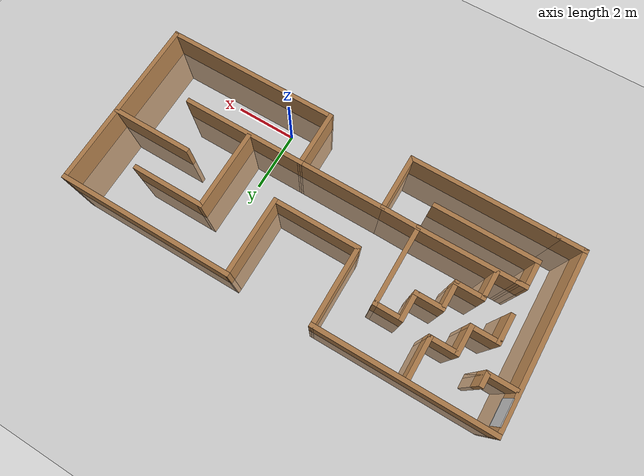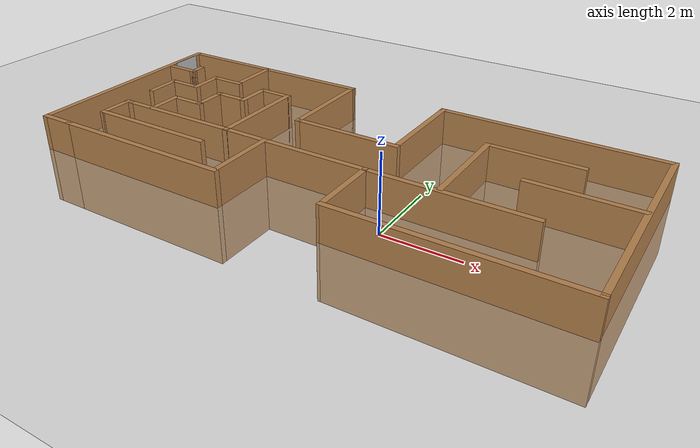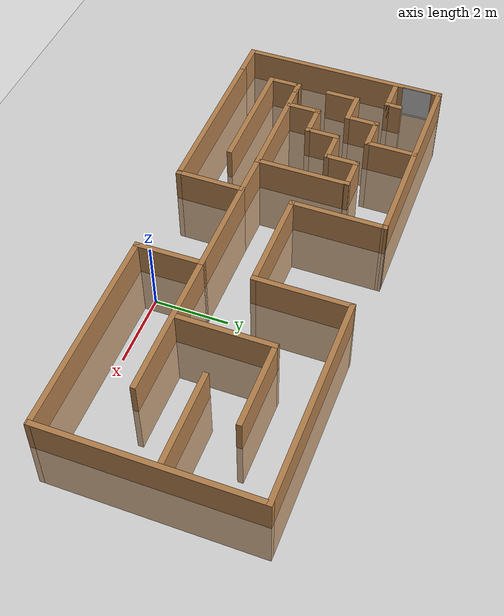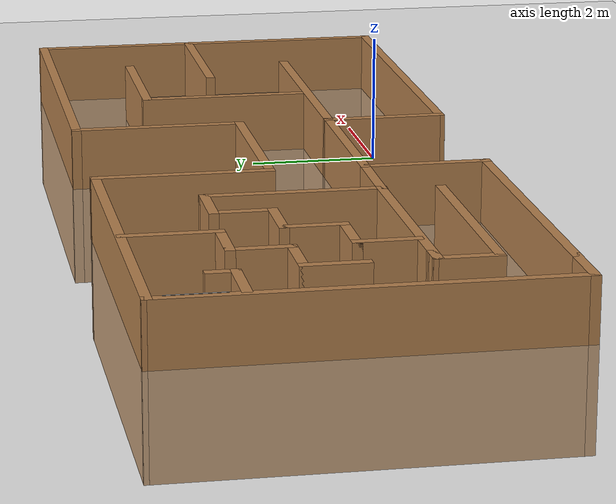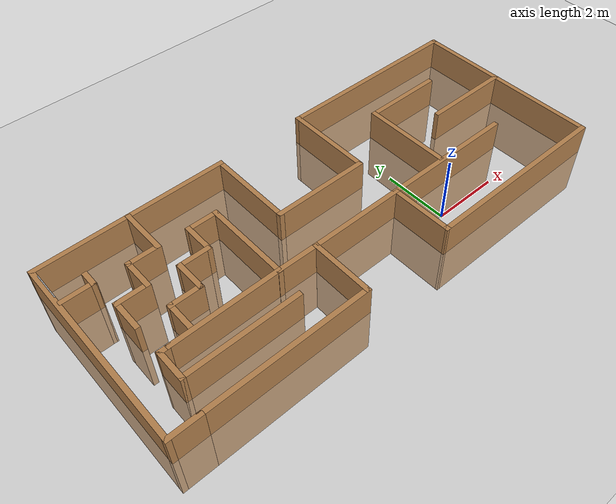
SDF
<sdf version="1.7">
 <world name="default">
  <light name="sun" type="directional">
   <pose>0 0 10 0 -0 0</pose>
   <diffuse>0.8 0.8 0.8 1</diffuse>
   <specular>0.2 0.2 0.2 1</specular>
   <attenuation>
    <range>1000</range>
    <constant>0.9</constant>
    <linear>0.01</linear>
    <quadratic>0.001</quadratic>
   </attenuation>
   <direction>-0.5 0.1 -0.9</direction>
   <spot><inner_angle>0</inner_angle><outer_angle>0</outer_angle><falloff>0</falloff></spot>
  </light>
  <model name="ground_plane">
   <static>1</static>
   <link name="link">
    <collision name="collision">
     <geometry><plane><normal>0 0 1</normal><size>100 100</size></plane></geometry>
     <surface>
      <contact><collide_bitmask>65535</collide_bitmask></contact>
      <friction><ode><mu>100</mu><mu2>50</mu2></ode></friction>
     </surface>
    </collision>
    <visual name="visual">
     <cast_shadows>0</cast_shadows>
     <geometry><plane><normal>0 0 1</normal><size>100 100</size></plane></geometry>
     <material>
      <script><uri>file://media/materials/scripts/gazebo.material</uri><name>Gazebo/Grey</name></script>
     </material>
    </visual>
   </link>
  </model>
  <gravity>0 0 -9.8</gravity>
  <magnetic_field>6e-06 2.3e-05 -4.2e-05</magnetic_field>
  <atmosphere type="adiabatic"/>
  <physics type="ode">
   <max_step_size>0.001</max_step_size>
   <real_time_factor>1</real_time_factor>
   <real_time_update_rate>1000</real_time_update_rate>
  </physics>
  <scene><ambient>0.4 0.4 0.4 1</ambient><background>0.7 0.7 0.7 1</background><shadows>1</shadows></scene>
  <audio><device>default</device></audio>
  <spherical_coordinates>
   <surface_model>EARTH_WGS84</surface_model>
   <latitude_deg>0</latitude_deg>
   <longitude_deg>0</longitude_deg>
   <elevation>0</elevation>
   <heading_deg>0</heading_deg>
  </spherical_coordinates>
  <model name="trsa_two_rooms">
   <pose>-2.2676 2.02466 -1.56619 0 -0 0</pose>
   <link name="Wall_102">
    <collision name="Wall_102_Collision">
     <geometry><box><size>1 0.15 2.5</size></box></geometry>
     <pose>0 0 1.25 0 -0 0</pose>
    </collision>
    <visual name="Wall_102_Visual">
     <pose>0 0 1.25 0 -0 0</pose>
     <geometry><box><size>1 0.15 2.5</size></box></geometry>
     <material>
      <script><uri>file://media/materials/scripts/gazebo.material</uri><name>Gazebo/Wood</name></script>
      <ambient>1 1 1 1</ambient>
     </material>
     <meta><layer>0</layer></meta>
    </visual>
    <pose>-3.13374 1.50612 0 0 -0 3.14159</pose>
   </link>
   <link name="Wall_103">
    <collision name="Wall_103_Collision">
     <geometry><box><size>1 0.15 2.5</size></box></geometry>
     <pose>0 0 1.25 0 -0 0</pose>
    </collision>
    <visual name="Wall_103_Visual">
     <pose>0 0 1.25 0 -0 0</pose>
     <geometry><box><size>1 0.15 2.5</size></box></geometry>
     <material>
      <script><uri>file://media/materials/scripts/gazebo.material</uri><name>Gazebo/Wood</name></script>
      <ambient>1 1 1 1</ambient>
     </material>
     <meta><layer>0</layer></meta>
    </visual>
    <pose>-3.55874 1.08112 0 0 -0 -1.5708</pose>
   </link>
   <link name="Wall_104">
    <collision name="Wall_104_Collision">
     <geometry><box><size>1 0.15 2.5</size></box></geometry>
     <pose>0 0 1.25 0 -0 0</pose>
    </collision>
    <visual name="Wall_104_Visual">
     <pose>0 0 1.25 0 -0 0</pose>
     <geometry><box><size>1 0.15 2.5</size></box></geometry>
     <material>
      <script><uri>file://media/materials/scripts/gazebo.material</uri><name>Gazebo/Wood</name></script>
      <ambient>1 1 1 1</ambient>
     </material>
     <meta><layer>0</layer></meta>
    </visual>
    <pose>-3.98374 0.656123 0 0 -0 3.14159</pose>
   </link>
   <link name="Wall_105">
    <collision name="Wall_105_Collision">
     <geometry><box><size>1 0.15 2.5</size></box></geometry>
     <pose>0 0 1.25 0 -0 0</pose>
    </collision>
    <visual name="Wall_105_Visual">
     <pose>0 0 1.25 0 -0 0</pose>
     <geometry><box><size>1 0.15 2.5</size></box></geometry>
     <material>
      <script><uri>file://media/materials/scripts/gazebo.material</uri><name>Gazebo/Wood</name></script>
      <ambient>1 1 1 1</ambient>
     </material>
     <meta><layer>0</layer></meta>
    </visual>
    <pose>-4.40874 0.231123 0 0 -0 -1.5708</pose>
   </link>
   <link name="Wall_106">
    <collision name="Wall_106_Collision">
     <geometry><box><size>1 0.15 2.5</size></box></geometry>
     <pose>0 0 1.25 0 -0 0</pose>
    </collision>
    <visual name="Wall_106_Visual">
     <pose>0 0 1.25 0 -0 0</pose>
     <geometry><box><size>1 0.15 2.5</size></box></geometry>
     <material>
      <script><uri>file://media/materials/scripts/gazebo.material</uri><name>Gazebo/Wood</name></script>
      <ambient>1 1 1 1</ambient>
     </material>
     <meta><layer>0</layer></meta>
    </visual>
    <pose>-4.83374 -0.193877 0 0 -0 3.14159</pose>
   </link>
   <link name="Wall_107">
    <collision name="Wall_107_Collision">
     <geometry><box><size>1 0.15 2.5</size></box></geometry>
     <pose>0 0 1.25 0 -0 0</pose>
    </collision>
    <visual name="Wall_107_Visual">
     <pose>0 0 1.25 0 -0 0</pose>
     <geometry><box><size>1 0.15 2.5</size></box></geometry>
     <material>
      <script><uri>file://media/materials/scripts/gazebo.material</uri><name>Gazebo/Wood</name></script>
      <ambient>1 1 1 1</ambient>
     </material>
     <meta><layer>0</layer></meta>
    </visual>
    <pose>-5.25874 -0.618877 0 0 -0 -1.5708</pose>
   </link>
   <link name="Wall_110">
    <collision name="Wall_110_Collision">
     <geometry><box><size>1.5 0.15 2.5</size></box></geometry>
     <pose>0 0 1.25 0 -0 0</pose>
    </collision>
    <visual name="Wall_110_Visual">
     <pose>0 0 1.25 0 -0 0</pose>
     <geometry><box><size>1.5 0.15 2.5</size></box></geometry>
     <material>
      <script><uri>file://media/materials/scripts/gazebo.material</uri><name>Gazebo/Wood</name></script>
      <ambient>1 1 1 1</ambient>
     </material>
     <meta><layer>0</layer></meta>
    </visual>
    <pose>-4.47062 2.22543 0 0 -0 -1.5708</pose>
   </link>
   <link name="Wall_111">
    <collision name="Wall_111_Collision">
     <geometry><box><size>1 0.15 2.5</size></box></geometry>
     <pose>0 0 1.25 0 -0 0</pose>
    </collision>
    <visual name="Wall_111_Visual">
     <pose>0 0 1.25 0 -0 0</pose>
     <geometry><box><size>1 0.15 2.5</size></box></geometry>
     <material>
      <script><uri>file://media/materials/scripts/gazebo.material</uri><name>Gazebo/Wood</name></script>
      <ambient>1 1 1 1</ambient>
     </material>
     <meta><layer>0</layer></meta>
    </visual>
    <pose>-4.89562 1.55043 0 0 -0 3.14159</pose>
   </link>
   <link name="Wall_112">
    <collision name="Wall_112_Collision">
     <geometry><box><size>1 0.15 2.5</size></box></geometry>
     <pose>0 0 1.25 0 -0 0</pose>
    </collision>
    <visual name="Wall_112_Visual">
     <pose>0 0 1.25 0 -0 0</pose>
     <geometry><box><size>1 0.15 2.5</size></box></geometry>
     <material>
      <script><uri>file://media/materials/scripts/gazebo.material</uri><name>Gazebo/Wood</name></script>
      <ambient>1 1 1 1</ambient>
     </material>
     <meta><layer>0</layer></meta>
    </visual>
    <pose>-5.32062 1.12543 0 0 -0 -1.5708</pose>
   </link>
   <link name="Wall_113">
    <collision name="Wall_113_Collision">
     <geometry><box><size>1 0.15 2.5</size></box></geometry>
     <pose>0 0 1.25 0 -0 0</pose>
    </collision>
    <visual name="Wall_113_Visual">
     <pose>0 0 1.25 0 -0 0</pose>
     <geometry><box><size>1 0.15 2.5</size></box></geometry>
     <material>
      <script><uri>file://media/materials/scripts/gazebo.material</uri><name>Gazebo/Wood</name></script>
      <ambient>1 1 1 1</ambient>
     </material>
     <meta><layer>0</layer></meta>
    </visual>
    <pose>-5.74562 0.700426 0 0 -0 3.14159</pose>
   </link>
   <link name="Wall_114">
    <collision name="Wall_114_Collision">
     <geometry><box><size>1 0.15 2.5</size></box></geometry>
     <pose>0 0 1.25 0 -0 0</pose>
    </collision>
    <visual name="Wall_114_Visual">
     <pose>0 0 1.25 0 -0 0</pose>
     <geometry><box><size>1 0.15 2.5</size></box></geometry>
     <material>
      <script><uri>file://media/materials/scripts/gazebo.material</uri><name>Gazebo/Wood</name></script>
      <ambient>1 1 1 1</ambient>
     </material>
     <meta><layer>0</layer></meta>
    </visual>
    <pose>-6.17062 0.275426 0 0 -0 -1.5708</pose>
   </link>
   <link name="Wall_116">
    <collision name="Wall_116_Collision">
     <geometry><box><size>1 0.15 2.5</size></box></geometry>
     <pose>0 0 1.25 0 -0 0</pose>
    </collision>
    <visual name="Wall_116_Visual">
     <pose>0 0 1.25 0 -0 0</pose>
     <geometry><box><size>1 0.15 2.5</size></box></geometry>
     <material>
      <script><uri>file://media/materials/scripts/gazebo.material</uri><name>Gazebo/Wood</name></script>
      <ambient>1 1 1 1</ambient>
     </material>
     <meta><layer>0</layer></meta>
    </visual>
    <pose>-6.69062 1.61099 0 0 -0 0</pose>
   </link>
   <link name="Wall_117">
    <collision name="Wall_117_Collision">
     <geometry><box><size>0.5 0.15 2.5</size></box></geometry>
     <pose>0 0 1.25 0 -0 0</pose>
    </collision>
    <visual name="Wall_117_Visual">
     <pose>0 0 1.25 0 -0 0</pose>
     <geometry><box><size>0.5 0.15 2.5</size></box></geometry>
     <material>
      <script><uri>file://media/materials/scripts/gazebo.material</uri><name>Gazebo/Wood</name></script>
      <ambient>1 1 1 1</ambient>
     </material>
     <meta><layer>0</layer></meta>
    </visual>
    <pose>-6.26562 1.78599 0 0 -0 1.5708</pose>
   </link>
   <link name="Wall_119">
    <collision name="Wall_119_Collision">
     <geometry><box><size>0.403213 0.15 2.5</size></box></geometry>
     <pose>0 0 1.25 0 -0 0</pose>
    </collision>
    <visual name="Wall_119_Visual">
     <pose>0 0 1.25 0 -0 0</pose>
     <geometry><box><size>0.403213 0.15 2.5</size></box></geometry>
     <material>
      <script><uri>file://media/materials/scripts/gazebo.material</uri><name>Gazebo/Wood</name></script>
      <ambient>1 1 1 1</ambient>
     </material>
     <meta><layer>0</layer></meta>
    </visual>
    <pose>-6.03421 -1.10246 0 0 -0 -3.1324</pose>
   </link>
   <link name="Wall_124">
    <collision name="Wall_124_Collision">
     <geometry><box><size>1 0.15 2.5</size></box></geometry>
     <pose>0 0 1.25 0 -0 0</pose>
    </collision>
    <visual name="Wall_124_Visual">
     <pose>0 0 1.25 0 -0 0</pose>
     <geometry><box><size>1 0.15 2.5</size></box></geometry>
     <material>
      <script><uri>file://media/materials/scripts/gazebo.material</uri><name>Gazebo/Wood</name></script>
      <ambient>1 1 1 1</ambient>
     </material>
     <meta><layer>0</layer></meta>
    </visual>
    <pose>-6.16082 -1.52862 0 0 -0 -1.5708</pose>
   </link>
   <link name="Wall_125">
    <collision name="Wall_125_Collision">
     <geometry><box><size>3.5 0.15 2.5</size></box></geometry>
     <pose>0 0 1.25 0 -0 0</pose>
    </collision>
    <visual name="Wall_125_Visual">
     <pose>0 0 1.25 0 -0 0</pose>
     <geometry><box><size>3.5 0.15 2.5</size></box></geometry>
     <material>
      <script><uri>file://media/materials/scripts/gazebo.material</uri><name>Gazebo/Wood</name></script>
      <ambient>1 1 1 1</ambient>
     </material>
     <meta><layer>0</layer></meta>
    </visual>
    <pose>-4.48581 -1.95362 0 0 -0 0</pose>
   </link>
   <link name="Wall_60">
    <collision name="Wall_60_Collision">
     <geometry><box><size>6 0.15 2.5</size></box></geometry>
     <pose>0 0 1.25 0 -0 0</pose>
    </collision>
    <visual name="Wall_60_Visual">
     <pose>0 0 1.25 0 -0 0</pose>
     <geometry><box><size>6 0.15 2.5</size></box></geometry>
     <material>
      <script><uri>file://media/materials/scripts/gazebo.material</uri><name>Gazebo/Wood</name></script>
      <ambient>1 1 1 1</ambient>
     </material>
     <meta><layer>0</layer></meta>
    </visual>
    <pose>4.28307 2.9425 0 0 -0 0</pose>
   </link>
   <link name="Wall_61">
    <collision name="Wall_61_Collision">
     <geometry><box><size>6 0.15 2.5</size></box></geometry>
     <pose>0 0 1.25 0 -0 0</pose>
    </collision>
    <visual name="Wall_61_Visual">
     <pose>0 0 1.25 0 -0 0</pose>
     <geometry><box><size>6 0.15 2.5</size></box></geometry>
     <material>
      <script><uri>file://media/materials/scripts/gazebo.material</uri><name>Gazebo/Wood</name></script>
      <ambient>1 1 1 1</ambient>
     </material>
     <meta><layer>0</layer></meta>
    </visual>
    <pose>7.20807 0.017501 0 0 -0 -1.5708</pose>
   </link>
   <link name="Wall_62">
    <collision name="Wall_62_Collision">
     <geometry><box><size>6 0.15 2.5</size></box></geometry>
     <pose>0 0 1.25 0 -0 0</pose>
    </collision>
    <visual name="Wall_62_Visual">
     <pose>0 0 1.25 0 -0 0</pose>
     <geometry><box><size>6 0.15 2.5</size></box></geometry>
     <material>
      <script><uri>file://media/materials/scripts/gazebo.material</uri><name>Gazebo/Wood</name></script>
      <ambient>1 1 1 1</ambient>
     </material>
     <meta><layer>0</layer></meta>
    </visual>
    <pose>4.28307 -2.9075 0 0 -0 3.14159</pose>
   </link>
   <link name="Wall_65">
    <collision name="Wall_65_Collision">
     <geometry><box><size>4.25 0.15 2.5</size></box></geometry>
     <pose>0 0 1.25 0 -0 0</pose>
    </collision>
    <visual name="Wall_65_Visual">
     <pose>0 0 1.25 0 -0 0</pose>
     <geometry><box><size>4.25 0.15 2.5</size></box></geometry>
     <material>
      <script><uri>file://media/materials/scripts/gazebo.material</uri><name>Gazebo/Wood</name></script>
      <ambient>1 1 1 1</ambient>
     </material>
     <meta><layer>0</layer></meta>
    </visual>
    <pose>3.39239 -1.09296 0 0 -0 0</pose>
   </link>
   <link name="Wall_67">
    <collision name="Wall_67_Collision">
     <geometry><box><size>2.75 0.15 2.5</size></box></geometry>
     <pose>0 0 1.25 0 -0 0</pose>
    </collision>
    <visual name="Wall_67_Visual">
     <pose>0 0 1.25 0 -0 0</pose>
     <geometry><box><size>2.75 0.15 2.5</size></box></geometry>
     <material>
      <script><uri>file://media/materials/scripts/gazebo.material</uri><name>Gazebo/Wood</name></script>
      <ambient>1 1 1 1</ambient>
     </material>
     <meta><layer>0</layer></meta>
    </visual>
    <pose>5.87241 0.339193 0 0 -0 3.14159</pose>
   </link>
   <link name="Wall_69">
    <collision name="Wall_69_Collision">
     <geometry><box><size>2.75 0.15 2.5</size></box></geometry>
     <pose>0 0 1.25 0 -0 0</pose>
    </collision>
    <visual name="Wall_69_Visual">
     <pose>0 0 1.25 0 -0 0</pose>
     <geometry><box><size>2.75 0.15 2.5</size></box></geometry>
     <material>
      <script><uri>file://media/materials/scripts/gazebo.material</uri><name>Gazebo/Wood</name></script>
      <ambient>1 1 1 1</ambient>
     </material>
     <meta><layer>0</layer></meta>
    </visual>
    <pose>3.18011 0.295753 0 0 -0 1.5708</pose>
   </link>
   <link name="Wall_70">
    <collision name="Wall_70_Collision">
     <geometry><box><size>2.5 0.15 2.5</size></box></geometry>
     <pose>0 0 1.25 0 -0 0</pose>
    </collision>
    <visual name="Wall_70_Visual">
     <pose>0 0 1.25 0 -0 0</pose>
     <geometry><box><size>2.5 0.15 2.5</size></box></geometry>
     <material>
      <script><uri>file://media/materials/scripts/gazebo.material</uri><name>Gazebo/Wood</name></script>
      <ambient>1 1 1 1</ambient>
     </material>
     <meta><layer>0</layer></meta>
    </visual>
    <pose>4.35511 1.59575 0 0 -0 0</pose>
   </link>
   <link name="Wall_72">
    <collision name="Wall_72_Collision">
     <geometry><box><size>2.75 0.15 2.5</size></box></geometry>
     <pose>0 0 1.25 0 -0 0</pose>
    </collision>
    <visual name="Wall_72_Visual">
     <pose>0 0 1.25 0 -0 0</pose>
     <geometry><box><size>2.75 0.15 2.5</size></box></geometry>
     <material>
      <script><uri>file://media/materials/scripts/gazebo.material</uri><name>Gazebo/Wood</name></script>
      <ambient>1 1 1 1</ambient>
     </material>
     <meta><layer>0</layer></meta>
    </visual>
    <pose>1.35807 1.6425 0 0 -0 -1.5708</pose>
   </link>
   <link name="Wall_73">
    <collision name="Wall_73_Collision">
     <geometry><box><size>3 0.15 2.5</size></box></geometry>
     <pose>0 0 1.25 0 -0 0</pose>
    </collision>
    <visual name="Wall_73_Visual">
     <pose>0 0 1.25 0 -0 0</pose>
     <geometry><box><size>3 0.15 2.5</size></box></geometry>
     <material>
      <script><uri>file://media/materials/scripts/gazebo.material</uri><name>Gazebo/Wood</name></script>
      <ambient>1 1 1 1</ambient>
     </material>
     <meta><layer>0</layer></meta>
    </visual>
    <pose>-0.066926 0.342501 0 0 -0 3.14159</pose>
   </link>
   <link name="Wall_74">
    <collision name="Wall_74_Collision">
     <geometry><box><size>2.75 0.15 2.5</size></box></geometry>
     <pose>0 0 1.25 0 -0 0</pose>
    </collision>
    <visual name="Wall_74_Visual">
     <pose>0 0 1.25 0 -0 0</pose>
     <geometry><box><size>2.75 0.15 2.5</size></box></geometry>
     <material>
      <script><uri>file://media/materials/scripts/gazebo.material</uri><name>Gazebo/Wood</name></script>
      <ambient>1 1 1 1</ambient>
     </material>
     <meta><layer>0</layer></meta>
    </visual>
    <pose>-1.49193 1.6425 0 0 -0 1.5708</pose>
   </link>
   <link name="Wall_76">
    <collision name="Wall_76_Collision">
     <geometry><box><size>1.9646 0.15 2.5</size></box></geometry>
     <pose>0 0 1.25 0 -0 0</pose>
    </collision>
    <visual name="Wall_76_Visual">
     <pose>0 0 1.25 0 -0 0</pose>
     <geometry><box><size>1.9646 0.15 2.5</size></box></geometry>
     <material>
      <script><uri>file://media/materials/scripts/gazebo.material</uri><name>Gazebo/Wood</name></script>
      <ambient>1 1 1 1</ambient>
     </material>
     <meta><layer>0</layer></meta>
    </visual>
    <pose>1.35023 -2.00023 0 0 -0 -1.56215</pose>
   </link>
   <link name="Wall_78">
    <collision name="Wall_78_Collision">
     <geometry><box><size>3 0.15 2.5</size></box></geometry>
     <pose>0 0 1.25 0 -0 0</pose>
    </collision>
    <visual name="Wall_78_Visual">
     <pose>0 0 1.25 0 -0 0</pose>
     <geometry><box><size>3 0.15 2.5</size></box></geometry>
     <material>
      <script><uri>file://media/materials/scripts/gazebo.material</uri><name>Gazebo/Wood</name></script>
      <ambient>1 1 1 1</ambient>
     </material>
     <meta><layer>0</layer></meta>
    </visual>
    <pose>-0.082612 -1.09296 0 0 -0 3.14159</pose>
   </link>
   <link name="Wall_79">
    <collision name="Wall_79_Collision">
     <geometry><box><size>2 0.15 2.5</size></box></geometry>
     <pose>0 0 1.25 0 -0 0</pose>
    </collision>
    <visual name="Wall_79_Visual">
     <pose>0 0 1.25 0 -0 0</pose>
     <geometry><box><size>2 0.15 2.5</size></box></geometry>
     <material>
      <script><uri>file://media/materials/scripts/gazebo.material</uri><name>Gazebo/Wood</name></script>
      <ambient>1 1 1 1</ambient>
     </material>
     <meta><layer>0</layer></meta>
    </visual>
    <pose>-1.50761 -2.01796 0 0 -0 -1.5708</pose>
   </link>
   <link name="Wall_80">
    <collision name="Wall_80_Collision">
     <geometry><box><size>5 0.15 2.5</size></box></geometry>
     <pose>0 0 1.25 0 -0 0</pose>
    </collision>
    <visual name="Wall_80_Visual">
     <pose>0 0 1.25 0 -0 0</pose>
     <geometry><box><size>5 0.15 2.5</size></box></geometry>
     <material>
      <script><uri>file://media/materials/scripts/gazebo.material</uri><name>Gazebo/Wood</name></script>
      <ambient>1 1 1 1</ambient>
     </material>
     <meta><layer>0</layer></meta>
    </visual>
    <pose>-3.93261 -2.94296 0 0 -0 3.14159</pose>
   </link>
   <link name="Wall_81">
    <collision name="Wall_81_Collision">
     <geometry><box><size>1 0.15 2.5</size></box></geometry>
     <pose>0 0 1.25 0 -0 0</pose>
    </collision>
    <visual name="Wall_81_Visual">
     <pose>0 0 1.25 0 -0 0</pose>
     <geometry><box><size>1 0.15 2.5</size></box></geometry>
     <material>
      <script><uri>file://media/materials/scripts/gazebo.material</uri><name>Gazebo/Wood</name></script>
      <ambient>1 1 1 1</ambient>
     </material>
     <meta><layer>0</layer></meta>
    </visual>
    <pose>-6.78261 -2.94296 0 0 -0 3.14159</pose>
   </link>
   <link name="Wall_82">
    <collision name="Wall_82_Collision">
     <geometry><box><size>6 0.15 2.5</size></box></geometry>
     <pose>0 0 1.25 0 -0 0</pose>
    </collision>
    <visual name="Wall_82_Visual">
     <pose>0 0 1.25 0 -0 0</pose>
     <geometry><box><size>6 0.15 2.5</size></box></geometry>
     <material>
      <script><uri>file://media/materials/scripts/gazebo.material</uri><name>Gazebo/Wood</name></script>
      <ambient>1 1 1 1</ambient>
     </material>
     <meta><layer>0</layer></meta>
    </visual>
    <pose>-7.20761 -0.017965 0 0 -0 1.5708</pose>
   </link>
   <link name="Wall_83">
    <collision name="Wall_83_Collision">
     <geometry><box><size>5.8658 0.15 2.5</size></box></geometry>
     <pose>0 0 1.25 0 -0 0</pose>
    </collision>
    <visual name="Wall_83_Visual">
     <pose>0 0 1.25 0 -0 0</pose>
     <geometry><box><size>5.8658 0.15 2.5</size></box></geometry>
     <material>
      <script><uri>file://media/materials/scripts/gazebo.material</uri><name>Gazebo/Wood</name></script>
      <ambient>1 1 1 1</ambient>
     </material>
     <meta><layer>0</layer></meta>
    </visual>
    <pose>-4.34977 2.92477 0 0 -0 0.006205</pose>
   </link>
   <link name="Wall_85">
    <collision name="Wall_85_Collision">
     <geometry><box><size>1.35158 0.15 2.5</size></box></geometry>
     <pose>0 0 1.25 0 -0 0</pose>
    </collision>
    <visual name="Wall_85_Visual">
     <pose>0 0 1.25 0 -0 0</pose>
     <geometry><box><size>1.35158 0.15 2.5</size></box></geometry>
     <material>
      <script><uri>file://media/materials/scripts/gazebo.material</uri><name>Gazebo/Wood</name></script>
      <ambient>1 1 1 1</ambient>
     </material>
     <meta><layer>0</layer></meta>
    </visual>
    <pose>-2.1083 -1.08745 0 0 -0 3.13242</pose>
   </link>
   <link name="Wall_86">
    <collision name="Wall_86_Collision">
     <geometry><box><size>2.74909 0.15 2.5</size></box></geometry>
     <pose>0 0 1.25 0 -0 0</pose>
    </collision>
    <visual name="Wall_86_Visual">
     <pose>0 0 1.25 0 -0 0</pose>
     <geometry><box><size>2.74909 0.15 2.5</size></box></geometry>
     <material>
      <script><uri>file://media/materials/scripts/gazebo.material</uri><name>Gazebo/Wood</name></script>
      <ambient>1 1 1 1</ambient>
     </material>
     <meta><layer>0</layer></meta>
    </visual>
    <pose>-2.70886 0.206579 0 0 -0 1.5707</pose>
   </link>
   <link name="Wall_96">
    <collision name="Wall_96_Collision">
     <geometry><box><size>3.34865 0.15 2.5</size></box></geometry>
     <pose>0 0 1.25 0 -0 0</pose>
    </collision>
    <visual name="Wall_96_Visual">
     <pose>0 0 1.25 0 -0 0</pose>
     <geometry><box><size>3.34865 0.15 2.5</size></box></geometry>
     <material>
      <script><uri>file://media/materials/scripts/gazebo.material</uri><name>Gazebo/Wood</name></script>
      <ambient>1 1 1 1</ambient>
     </material>
     <meta><layer>0</layer></meta>
    </visual>
    <pose>-4.3083 -1.09162 0 0 -0 -3.13554</pose>
   </link>
   <static>1</static>
  </model>
  <model name="makerspet_poster">
   <link name="link">
    <visual name="visual">
     <geometry><box><size>0.03 0.85714 1</size></box></geometry>
     <material>
      <script>
       <uri>https://fuel.ignitionrobotics.org/1.0/makerspet/models/makerspet_poster/1/files/material/script</uri>
       <uri>https://fuel.ignitionrobotics.org/1.0/makerspet/models/makerspet_poster/1/files/material/textures</uri>
       <name>Custom/makerspet</name>
      </script>
     </material>
    </visual>
   </link>
   <static>1</static>
   <pose>-9.41414 4.28961 0.437069 0 -0 0</pose>
  </model>
 </world>
</sdf>
